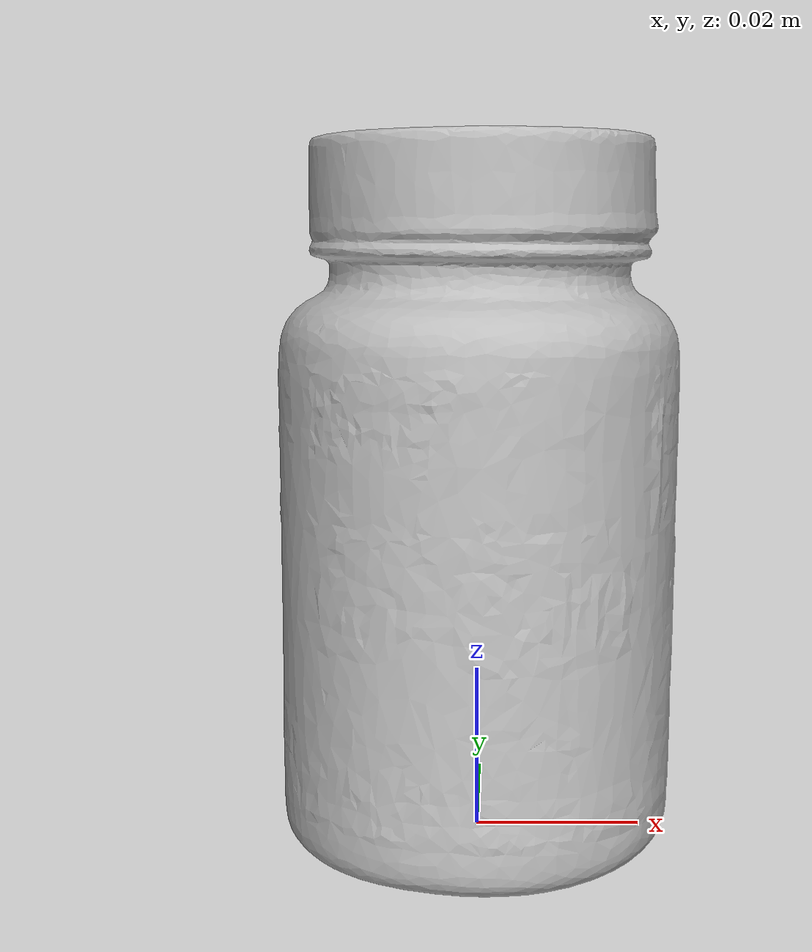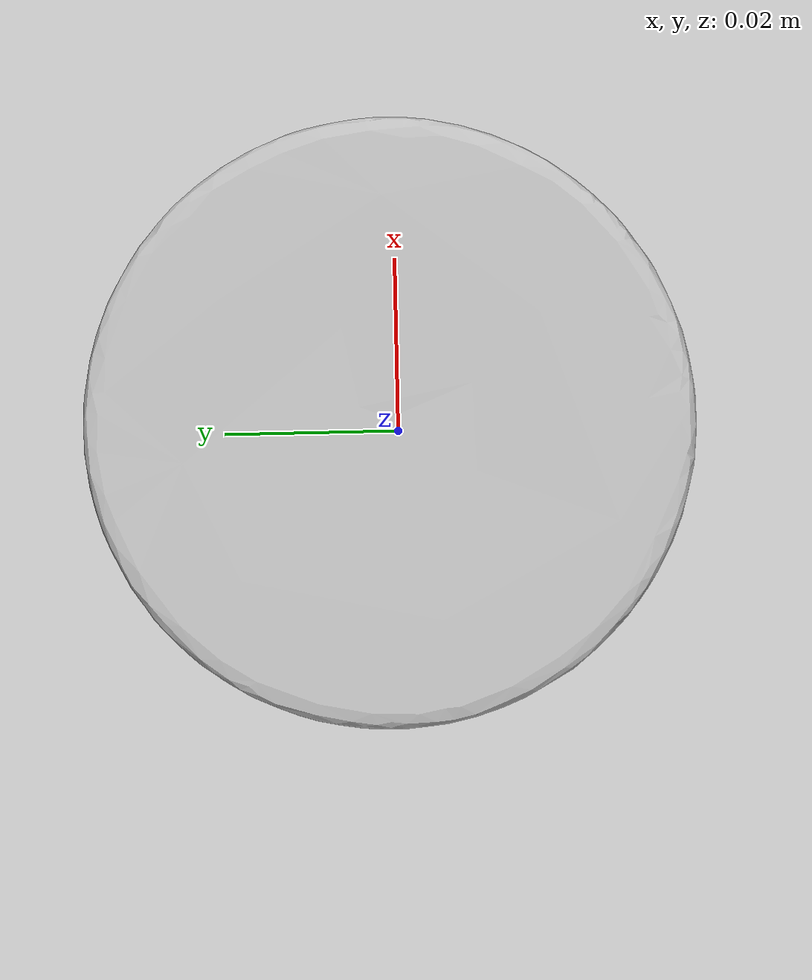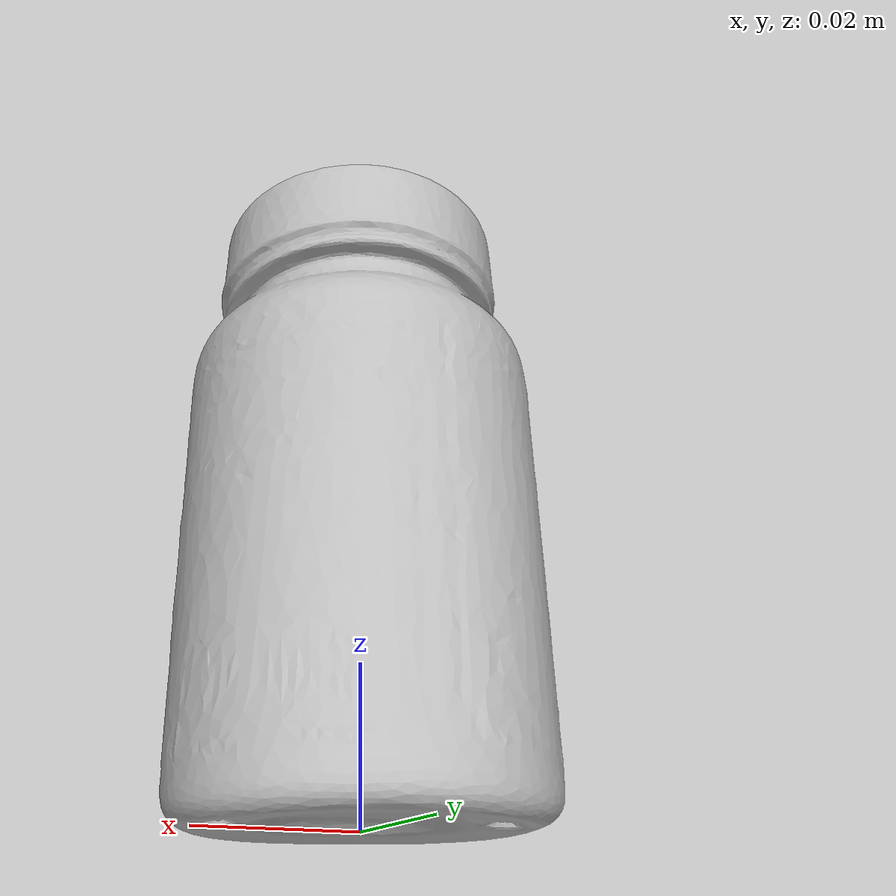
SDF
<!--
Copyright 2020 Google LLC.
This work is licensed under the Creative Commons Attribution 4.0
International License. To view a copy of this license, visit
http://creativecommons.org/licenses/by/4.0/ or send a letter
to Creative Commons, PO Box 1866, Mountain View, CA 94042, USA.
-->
<?xml version="1.0" ?>
<sdf version="1.6">
  <model name="CoQ10_BjTLbuRVt1t">
    <link name="link_0">
      <visual name="visual">
        <geometry>
          <mesh>
            <uri>meshes/model.obj</uri>
          </mesh>
        </geometry>
      </visual>
      <collision name="collision_0">
        <geometry>
          <mesh>
            <uri>meshes/model.obj</uri>
          </mesh>
        </geometry>
      </collision>
    </link>
  </model>
</sdf>
